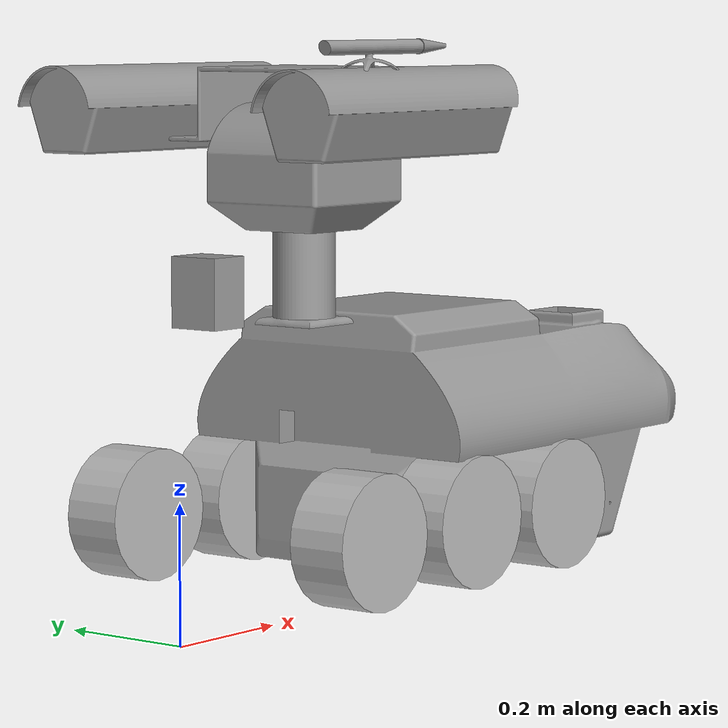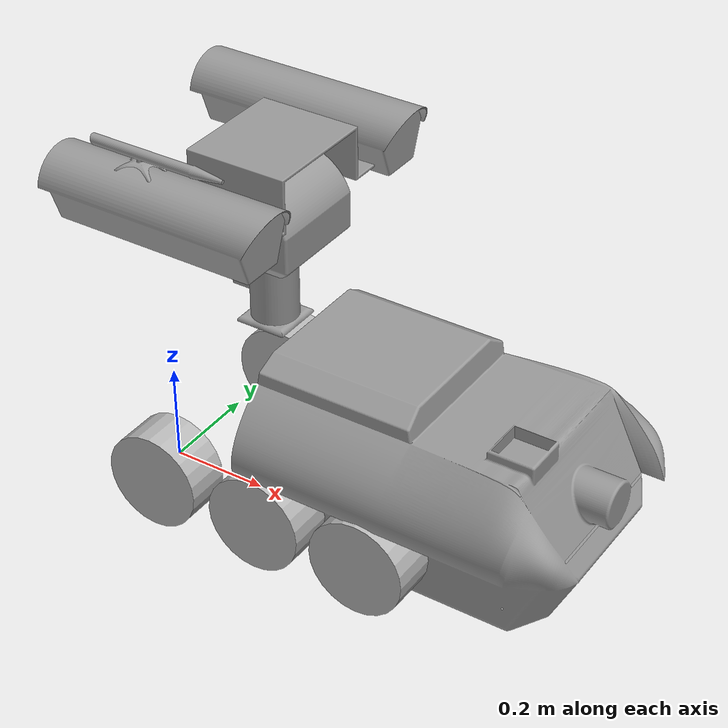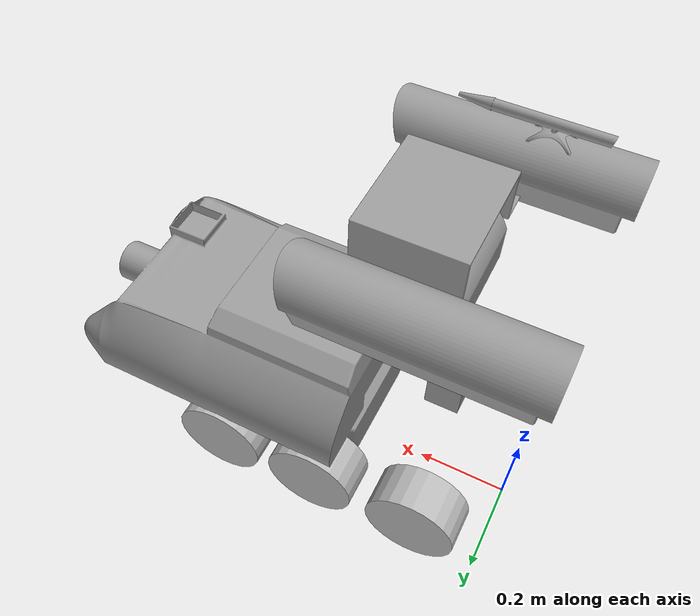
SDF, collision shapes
<sdf version='1.6'>
  <model name='MRC_"Plastun"'>
    <link name='chassis'>
      <pose frame=''>0 0 0 0 -0 0</pose>
      <inertial>
        <pose frame=''>0.318453 -0.004734 0.074568 0 -0 0</pose>
        <mass>31.0001</mass>
        <inertia>
          <ixx>0.463915</ixx>
          <ixy>-0.000471007</ixy>
          <ixz>0.0219991</ixz>
          <iyy>0.467563</iyy>
          <iyz>0.00280295</iyz>
          <izz>0.337105</izz>
        </inertia>
      </inertial>
      <collision name='chassis_collision'>
        <pose frame=''>0.32045 0 0.06272 0 -0 0</pose>
        <geometry>
          <mesh>
            <scale>1 1 1</scale>
            <uri>model://plastun_description/meshes/STL_min/chassis.stl</uri>
          </mesh>
        </geometry>
        <surface>
          <contact>
            <ode/>
          </contact>
          <friction>
            <ode/>
          </friction>
        </surface>
      </collision>
      <collision name='chassis_fixed_joint_lump__hokuyo_collision_1'>
        <pose frame=''>0.15582 0.0808 0.47783 0 -0 0</pose>
        <geometry>
          <box>
            <size>0.06524 0.079833 0.102579</size>
          </box>
        </geometry>
        <surface>
          <contact>
            <ode/>
          </contact>
          <friction>
            <ode/>
          </friction>
        </surface>
      </collision>
      <collision name='chassis_fixed_joint_lump__turrel_vniz_collision_2'>
        <pose frame=''>0.25857 -0.01238 0.42994 0 -0 0</pose>
        <geometry>
          <mesh>
            <scale>1 1 1</scale>
            <uri>model://plastun_description/meshes/STL_min/turrel_vniz.stl</uri>
          </mesh>
        </geometry>
        <surface>
          <contact>
            <ode/>
          </contact>
          <friction>
            <ode/>
          </friction>
        </surface>
      </collision>
      <visual name='chassis_visual'>
        <pose frame=''>0.32045 0 0.06272 0 -0 0</pose>
        <geometry>
          <mesh>
            <scale>1 1 1</scale>
            <uri>model://plastun_description/meshes/STL_min/chassis.stl</uri>
          </mesh>
        </geometry>
        <material>
          <script>
            <name>Gazebo/Grey</name>
            <uri>file://media/materials/scripts/gazebo.material</uri>
          </script>
        </material>
      </visual>
      <visual name='chassis_fixed_joint_lump__hokuyo_visual_1'>
        <pose frame=''>0.15582 0.0808 0.42783 0 -0 0</pose>
        <geometry>
          <mesh>
            <scale>1 1 1</scale>
            <uri>model://plastun_description/meshes/STL_min/hokuyo.stl</uri>
          </mesh>
        </geometry>
        <material>
          <script>
            <name>Gazebo/Grey</name>
            <uri>file://media/materials/scripts/gazebo.material</uri>
          </script>
        </material>
      </visual>
      <visual name='chassis_fixed_joint_lump__turrel_vniz_visual_2'>
        <pose frame=''>0.25857 -0.01238 0.42994 0 -0 0</pose>
        <geometry>
          <mesh>
            <scale>1 1 1</scale>
            <uri>model://plastun_description/meshes/STL_min/turrel_vniz.stl</uri>
          </mesh>
        </geometry>
        <material>
          <script>
            <name>Gazebo/Grey</name>
            <uri>file://media/materials/scripts/gazebo.material</uri>
          </script>
        </material>
      </visual>
      <velocity_decay/>
      <velocity_decay/>
      <velocity_decay/>
      <sensor name='head_hokuyo_sensor' type='gpu_ray'>
        <visualize>1</visualize>
        <update_rate>40</update_rate>
        <ray>
          <scan>
            <horizontal>
              <samples>720</samples>
              <resolution>1</resolution>
              <min_angle>-1.4708</min_angle>
              <max_angle>1.4708</max_angle>
            </horizontal>
          </scan>
          <range>
            <min>0.1</min>
            <max>30</max>
            <resolution>0.01</resolution>
          </range>
          <noise>
            <type>gaussian</type>
            <mean>0</mean>
            <stddev>0.01</stddev>
          </noise>
        </ray>
        <plugin name='gazebo_ros_head_hokuyo_controller' filename='libgazebo_ros_gpu_laser.so'>
          <topicName>plastun/laser/scan</topicName>
          <frameName>hokuyo_link</frameName>
        </plugin>
        <pose frame=''>0.15582 0.0808 2 0 -0 3.14</pose>
      </sensor>
      <gravity>1</gravity>
      <velocity_decay/>
      <self_collide>0</self_collide>
    </link>
    <link name='turrel_sered'>
      <pose frame=''>0.25902 -0.01271 0.56468 0 -0 0</pose>
      <inertial>
        <pose frame=''>0 0 0 0 -0 0</pose>
        <mass>1</mass>
        <inertia>
          <ixx>0.166667</ixx>
          <ixy>0</ixy>
          <ixz>0</ixz>
          <iyy>0.166667</iyy>
          <iyz>0</iyz>
          <izz>0.166667</izz>
        </inertia>
      </inertial>
      <collision name='turrel_sered_collision'>
        <pose frame=''>0 0 0 0 -0 0</pose>
        <geometry>
          <mesh>
            <scale>1 1 1</scale>
            <uri>model://plastun_description/meshes/STL_min/turrel_sered.stl</uri>
          </mesh>
        </geometry>
        <surface>
          <contact>
            <ode/>
          </contact>
          <friction>
            <ode/>
          </friction>
        </surface>
      </collision>
      <visual name='turrel_sered_visual'>
        <pose frame=''>0 0 0 0 -0 0</pose>
        <geometry>
          <mesh>
            <scale>1 1 1</scale>
            <uri>model://plastun_description/meshes/STL_min/turrel_sered.stl</uri>
          </mesh>
        </geometry>
        <material>
          <script>
            <name>Gazebo/Grey</name>
            <uri>file://media/materials/scripts/gazebo.material</uri>
          </script>
        </material>
      </visual>
      <gravity>1</gravity>
      <velocity_decay/>
      <self_collide>0</self_collide>
    </link>
    <joint name='turrel_vniz _ turrel_sered revolute' type='revolute'>
      <child>turrel_sered</child>
      <parent>chassis</parent>
      <axis>
        <xyz>0 0 1</xyz>
        <limit>
          <lower>-5</lower>
          <upper>5</upper>
          <effort>2</effort>
          <velocity>100</velocity>
        </limit>
        <dynamics>
          <spring_reference>0</spring_reference>
          <spring_stiffness>0</spring_stiffness>
        </dynamics>
        <use_parent_model_frame>1</use_parent_model_frame>
      </axis>
    </joint>
    <link name='turrel_vverh'>
      <pose frame=''>0.26208 -0.00803 0.69346 0 -0 0</pose>
      <inertial>
        <pose frame=''>-0.040349 -0.072867 0.028583 0 -0 0</pose>
        <mass>1.52996</mass>
        <inertia>
          <ixx>0.351851</ixx>
          <ixy>-0.00850413</ixy>
          <ixz>0.0034716</ixz>
          <iyy>0.343208</iyy>
          <iyz>0.00604847</iyz>
          <izz>0.356349</izz>
        </inertia>
      </inertial>
      <collision name='turrel_vverh_collision'>
        <pose frame=''>0 0 0 0 -0 0</pose>
        <geometry>
          <mesh>
            <scale>1 1 1</scale>
            <uri>model://plastun_description/meshes/STL_min/turrel_vverh.stl</uri>
          </mesh>
        </geometry>
        <surface>
          <contact>
            <ode/>
          </contact>
          <friction>
            <ode/>
          </friction>
        </surface>
      </collision>
      <collision name='turrel_vverh_fixed_joint_lump__camera_1_collision_1'>
        <pose frame=''>-0.07152 -0.21215 -0.017 0 -0 0</pose>
        <geometry>
          <mesh>
            <scale>1 1 1</scale>
            <uri>model://plastun_description/meshes/STL_min/camera.stl</uri>
          </mesh>
        </geometry>
        <surface>
          <contact>
            <ode/>
          </contact>
          <friction>
            <ode/>
          </friction>
        </surface>
      </collision>
      <collision name='turrel_vverh_fixed_joint_lump__lazer_ukazka_collision_2'>
        <pose frame=''>-0.11918 -0.21104 0.08848 0 -0 0</pose>
        <geometry>
          <mesh>
            <scale>1 1 1</scale>
            <uri>model://plastun_description/meshes/STL_min/lazer_ukazka.stl</uri>
          </mesh>
        </geometry>
        <surface>
          <contact>
            <ode/>
          </contact>
          <friction>
            <ode/>
          </friction>
        </surface>
      </collision>
      <collision name='turrel_vverh_fixed_joint_lump__camera_2_collision_3'>
        <pose frame=''>-0.07152 0.21176 -0.017 0 -0 0</pose>
        <geometry>
          <mesh>
            <scale>1 1 1</scale>
            <uri>model://plastun_description/meshes/STL_min/camera.stl</uri>
          </mesh>
        </geometry>
        <surface>
          <contact>
            <ode/>
          </contact>
          <friction>
            <ode/>
          </friction>
        </surface>
      </collision>
      <visual name='turrel_vverh_visual'>
        <pose frame=''>0 0 0 0 -0 0</pose>
        <geometry>
          <mesh>
            <scale>1 1 1</scale>
            <uri>model://plastun_description/meshes/STL_min/turrel_vverh.stl</uri>
          </mesh>
        </geometry>
        <material>
          <script>
            <name>Gazebo/Grey</name>
            <uri>file://media/materials/scripts/gazebo.material</uri>
          </script>
        </material>
      </visual>
      <visual name='turrel_vverh_fixed_joint_lump__camera_1_visual_1'>
        <pose frame=''>-0.07152 -0.21215 -0.017 0 -0 0</pose>
        <geometry>
          <mesh>
            <scale>1 1 1</scale>
            <uri>model://plastun_description/meshes/STL_min/camera.stl</uri>
          </mesh>
        </geometry>
        <material>
          <script>
            <name>Gazebo/Grey</name>
            <uri>file://media/materials/scripts/gazebo.material</uri>
          </script>
        </material>
      </visual>
      <visual name='turrel_vverh_fixed_joint_lump__lazer_ukazka_visual_2'>
        <pose frame=''>-0.11918 -0.21104 0.08848 0 -0 0</pose>
        <geometry>
          <mesh>
            <scale>1 1 1</scale>
            <uri>model://plastun_description/meshes/STL_min/lazer_ukazka.stl</uri>
          </mesh>
        </geometry>
        <material>
          <script>
            <uri>__default__</uri>
            <name>__default__</name>
          </script>
        </material>
      </visual>
      <visual name='turrel_vverh_fixed_joint_lump__camera_2_visual_3'>
        <pose frame=''>-0.07152 0.21176 -0.017 0 -0 0</pose>
        <geometry>
          <mesh>
            <scale>1 1 1</scale>
            <uri>model://plastun_description/meshes/STL_min/camera.stl</uri>
          </mesh>
        </geometry>
        <material>
          <script>
            <name>Gazebo/Grey</name>
            <uri>file://media/materials/scripts/gazebo.material</uri>
          </script>
        </material>
      </visual>
      <velocity_decay/>
      <velocity_decay/>
      <velocity_decay/>
      <sensor name='camera' type='camera'>
        <camera name='__default__'>
          <horizontal_fov>1.0123</horizontal_fov>
          <image>
            <width>320</width>
            <height>200</height>
          </image>
          <clip>
            <near>0.001</near>
            <far>100</far>
          </clip>
        </camera>
        <always_on>1</always_on>
        <update_rate>30</update_rate>
        <visualize>1</visualize>
        <plugin name='camera_controller' filename='libgazebo_ros_camera.so'>
          <alwaysOn>true</alwaysOn>
          <updateRate>30</updateRate>
          <cameraName>plastun/camera_1</cameraName>
          <imageTopicName>image_raw_1</imageTopicName>
          <cameraInfoTopicName>camera_info_1</cameraInfoTopicName>
          <frameName>camera_link</frameName>
          <hackBaseline>0.07</hackBaseline>
          <distortionK1>0.0</distortionK1>
          <distortionK2>0.0</distortionK2>
          <distortionK3>0.0</distortionK3>
          <distortionT1>0.0</distortionT1>
          <distortionT2>0.0</distortionT2>
        </plugin>
        <pose frame=''>-0.07152 -0.21215 -0.017 0 -0 0</pose>
      </sensor>
      <velocity_decay/>
      <sensor name='head_hokuyo_sensor' type='gpu_ray'>
        <visualize>1</visualize>
        <update_rate>40</update_rate>
        <ray>
          <scan>
            <horizontal>
              <samples>2</samples>
              <resolution>1</resolution>
              <min_angle>-0.005</min_angle>
              <max_angle>0.005</max_angle>
            </horizontal>
          </scan>
          <range>
            <min>0.1</min>
            <max>30</max>
            <resolution>0.01</resolution>
          </range>
          <noise>
            <type>gaussian</type>
            <mean>0</mean>
            <stddev>0.01</stddev>
          </noise>
        </ray>
        <plugin name='gazebo_ros_head_hokuyo_controller' filename='libgazebo_ros_gpu_laser.so'>
          <topicName>plastun/laser/scan_ukaz</topicName>
          <frameName>ukaz_link</frameName>
        </plugin>
        <pose frame=''>-0.11918 -0.21104 0.08848 0 -0 0</pose>
      </sensor>
      <velocity_decay/>
      <gravity>1</gravity>
      <velocity_decay/>
      <self_collide>0</self_collide>
      <sensor name='camera' type='camera'>
        <camera name='__default__'>
          <horizontal_fov>1.0123</horizontal_fov>
          <image>
            <width>320</width>
            <height>200</height>
          </image>
          <clip>
            <near>0.001</near>
            <far>100</far>
          </clip>
        </camera>
        <always_on>1</always_on>
        <update_rate>30</update_rate>
        <visualize>1</visualize>
        <plugin name='camera_controller' filename='libgazebo_ros_camera.so'>
          <alwaysOn>true</alwaysOn>
          <updateRate>30</updateRate>
          <cameraName>plastun/camera_2</cameraName>
          <imageTopicName>image_raw_2</imageTopicName>
          <cameraInfoTopicName>camera_info_2</cameraInfoTopicName>
          <frameName>camera_link</frameName>
          <hackBaseline>0.07</hackBaseline>
          <distortionK1>0.0</distortionK1>
          <distortionK2>0.0</distortionK2>
          <distortionK3>0.0</distortionK3>
          <distortionT1>0.0</distortionT1>
          <distortionT2>0.0</distortionT2>
        </plugin>
        <pose frame=''>-0.07152 0.21176 -0.017 0 -0 0</pose>
      </sensor>
    </link>
    <joint name='turrel_sered _ turrel_vverh up-to-down' type='revolute'>
      <child>turrel_vverh</child>
      <parent>turrel_sered</parent>
      <axis>
        <xyz>0 1 0</xyz>
        <limit>
          <lower>-1</lower>
          <upper>1</upper>
          <effort>1</effort>
          <velocity>100</velocity>
        </limit>
        <dynamics>
          <spring_reference>0</spring_reference>
          <spring_stiffness>0</spring_stiffness>
        </dynamics>
        <use_parent_model_frame>1</use_parent_model_frame>
      </axis>
    </joint>
    <link name='wheel_left_1'>
      <pose frame=''>0.36566 -0.20499 0.15237 0 -0 0</pose>
      <inertial>
        <pose frame=''>0 0 0 0 -0 0</pose>
        <mass>1</mass>
        <inertia>
          <ixx>0.166667</ixx>
          <ixy>0</ixy>
          <ixz>0</ixz>
          <iyy>0.166667</iyy>
          <iyz>0</iyz>
          <izz>0.166667</izz>
        </inertia>
      </inertial>
      <collision name='wheel_left_1_collision'>
        <pose frame=''>0 0 0 1.5708 -0 0</pose>
        <geometry>
          <cylinder>
            <length>0.09</length>
            <radius>0.096</radius>
          </cylinder>
        </geometry>
      </collision>
      <visual name='wheel_left_1_visual'>
        <pose frame=''>0 0 0 0 -0 0</pose>
        <geometry>
          <mesh>
            <scale>1 1 1</scale>
            <uri>model://plastun_description/meshes/STL_min/wheel.stl</uri>
          </mesh>
        </geometry>
      </visual>
    </link>
    <joint name='wheel_lev_1' type='revolute'>
      <child>wheel_left_1</child>
      <parent>chassis</parent>
      <axis>
        <xyz>0 -1 0</xyz>
        <limit>
          <lower>-1e+50</lower>
          <upper>1e+50</upper>
          <effort>-1</effort>
          <velocity>100</velocity>
        </limit>
        <dynamics>
          <spring_reference>0</spring_reference>
          <spring_stiffness>0</spring_stiffness>
        </dynamics>
        <use_parent_model_frame>1</use_parent_model_frame>
      </axis>
    </joint>
    <link name='wheel_left_2'>
      <pose frame=''>0.13874 -0.20499 0.15237 0 -0 0</pose>
      <inertial>
        <pose frame=''>0 0 0 0 -0 0</pose>
        <mass>1</mass>
        <inertia>
          <ixx>0.166667</ixx>
          <ixy>0</ixy>
          <ixz>0</ixz>
          <iyy>0.166667</iyy>
          <iyz>0</iyz>
          <izz>0.166667</izz>
        </inertia>
      </inertial>
      <collision name='wheel_left_2_collision'>
        <pose frame=''>0 0 0 1.5708 -0 0</pose>
        <geometry>
          <cylinder>
            <length>0.09</length>
            <radius>0.096</radius>
          </cylinder>
        </geometry>
      </collision>
      <visual name='wheel_left_2_visual'>
        <pose frame=''>0 0 0 0 -0 0</pose>
        <geometry>
          <mesh>
            <scale>1 1 1</scale>
            <uri>model://plastun_description/meshes/STL_min/wheel.stl</uri>
          </mesh>
        </geometry>
      </visual>
    </link>
    <joint name='wheel_lev_2' type='revolute'>
      <child>wheel_left_2</child>
      <parent>chassis</parent>
      <axis>
        <xyz>0 -1 0</xyz>
        <limit>
          <lower>-1e+50</lower>
          <upper>1e+50</upper>
          <effort>-1</effort>
          <velocity>100</velocity>
        </limit>
        <dynamics>
          <spring_reference>0</spring_reference>
          <spring_stiffness>0</spring_stiffness>
        </dynamics>
        <use_parent_model_frame>1</use_parent_model_frame>
      </axis>
    </joint>
    <link name='wheel_left_3'>
      <pose frame=''>0.58393 -0.20499 0.15237 0 -0 0</pose>
      <inertial>
        <pose frame=''>0 0 0 0 -0 0</pose>
        <mass>1</mass>
        <inertia>
          <ixx>0.166667</ixx>
          <ixy>0</ixy>
          <ixz>0</ixz>
          <iyy>0.166667</iyy>
          <iyz>0</iyz>
          <izz>0.166667</izz>
        </inertia>
      </inertial>
      <collision name='wheel_left_3_collision'>
        <pose frame=''>0 0 0 1.5708 -0 0</pose>
        <geometry>
          <cylinder>
            <length>0.09</length>
            <radius>0.096</radius>
          </cylinder>
        </geometry>
      </collision>
      <visual name='wheel_left_3_visual'>
        <pose frame=''>0 0 0 0 -0 0</pose>
        <geometry>
          <mesh>
            <scale>1 1 1</scale>
            <uri>model://plastun_description/meshes/STL_min/wheel.stl</uri>
          </mesh>
        </geometry>
      </visual>
    </link>
    <joint name='wheel_lev_3' type='revolute'>
      <child>wheel_left_3</child>
      <parent>chassis</parent>
      <axis>
        <xyz>0 -1 0</xyz>
        <limit>
          <lower>-1e+50</lower>
          <upper>1e+50</upper>
          <effort>-1</effort>
          <velocity>100</velocity>
        </limit>
        <dynamics>
          <spring_reference>0</spring_reference>
          <spring_stiffness>0</spring_stiffness>
        </dynamics>
        <use_parent_model_frame>1</use_parent_model_frame>
      </axis>
    </joint>
    <link name='wheel_right_1'>
      <pose frame=''>0.13874 0.20499 0.15237 0 -0 0</pose>
      <inertial>
        <pose frame=''>0 0 0 0 -0 0</pose>
        <mass>1</mass>
        <inertia>
          <ixx>0.166667</ixx>
          <ixy>0</ixy>
          <ixz>0</ixz>
          <iyy>0.166667</iyy>
          <iyz>0</iyz>
          <izz>0.166667</izz>
        </inertia>
      </inertial>
      <collision name='wheel_right_1_collision'>
        <pose frame=''>0 0 0 1.5708 -0 0</pose>
        <geometry>
          <cylinder>
            <length>0.09</length>
            <radius>0.096</radius>
          </cylinder>
        </geometry>
      </collision>
      <visual name='wheel_right_1_visual'>
        <pose frame=''>0 0 0 0 -0 0</pose>
        <geometry>
          <mesh>
            <scale>1 1 1</scale>
            <uri>model://plastun_description/meshes/STL_min/wheel.stl</uri>
          </mesh>
        </geometry>
      </visual>
    </link>
    <joint name='wheel_prav_1' type='revolute'>
      <child>wheel_right_1</child>
      <parent>chassis</parent>
      <axis>
        <xyz>0 -1 0</xyz>
        <limit>
          <lower>-1e+50</lower>
          <upper>1e+50</upper>
          <effort>-1</effort>
          <velocity>100</velocity>
        </limit>
        <dynamics>
          <spring_reference>0</spring_reference>
          <spring_stiffness>0</spring_stiffness>
        </dynamics>
        <use_parent_model_frame>1</use_parent_model_frame>
      </axis>
    </joint>
    <link name='wheel_right_2'>
      <pose frame=''>0.36566 0.20499 0.15237 0 -0 0</pose>
      <inertial>
        <pose frame=''>0 0 0 0 -0 0</pose>
        <mass>1</mass>
        <inertia>
          <ixx>0.166667</ixx>
          <ixy>0</ixy>
          <ixz>0</ixz>
          <iyy>0.166667</iyy>
          <iyz>0</iyz>
          <izz>0.166667</izz>
        </inertia>
      </inertial>
      <collision name='wheel_right_2_collision'>
        <pose frame=''>0 0 0 1.5708 -0 0</pose>
        <geometry>
          <cylinder>
            <length>0.09</length>
            <radius>0.096</radius>
          </cylinder>
        </geometry>
      </collision>
      <visual name='wheel_right_2_visual'>
        <pose frame=''>0 0 0 0 -0 0</pose>
        <geometry>
          <mesh>
            <scale>1 1 1</scale>
            <uri>model://plastun_description/meshes/STL_min/wheel.stl</uri>
          </mesh>
        </geometry>
      </visual>
    </link>
    <joint name='wheel_prav_2' type='revolute'>
      <child>wheel_right_2</child>
      <parent>chassis</parent>
      <axis>
        <xyz>0 -1 0</xyz>
        <limit>
          <lower>-1e+50</lower>
          <upper>1e+50</upper>
          <effort>-1</effort>
          <velocity>100</velocity>
        </limit>
        <dynamics>
          <spring_reference>0</spring_reference>
          <spring_stiffness>0</spring_stiffness>
        </dynamics>
        <use_parent_model_frame>1</use_parent_model_frame>
      </axis>
    </joint>
    <link name='wheel_right_3'>
      <pose frame=''>0.58393 0.20499 0.15237 0 -0 0</pose>
      <inertial>
        <pose frame=''>0 0 0 0 -0 0</pose>
        <mass>1</mass>
        <inertia>
          <ixx>0.166667</ixx>
          <ixy>0</ixy>
          <ixz>0</ixz>
          <iyy>0.166667</iyy>
          <iyz>0</iyz>
          <izz>0.166667</izz>
        </inertia>
      </inertial>
      <collision name='wheel_right_3_collision'>
        <pose frame=''>0 0 0 1.5708 -0 0</pose>
        <geometry>
          <cylinder>
            <length>0.09</length>
            <radius>0.096</radius>
          </cylinder>
        </geometry>
      </collision>
      <visual name='wheel_right_3_visual'>
        <pose frame=''>0 0 0 0 -0 0</pose>
        <geometry>
          <mesh>
            <scale>1 1 1</scale>
            <uri>model://plastun_description/meshes/STL_min/wheel.stl</uri>
          </mesh>
        </geometry>
      </visual>
    </link>
    <joint name='wheel_prav_3' type='revolute'>
      <child>wheel_right_3</child>
      <parent>chassis</parent>
      <axis>
        <xyz>0 -1 0</xyz>
        <limit>
          <lower>-1e+50</lower>
          <upper>1e+50</upper>
          <effort>-1</effort>
          <velocity>100</velocity>
        </limit>
        <dynamics>
          <spring_reference>0</spring_reference>
          <spring_stiffness>0</spring_stiffness>
        </dynamics>
        <use_parent_model_frame>1</use_parent_model_frame>
      </axis>
    </joint>
    <plugin name='gazebo_ros_control' filename='libgazebo_ros_control.so'>
      <robotNamespace>/plastun</robotNamespace>
    </plugin>
    <static>0</static>
    <plugin name='skid_steer_drive_controller' filename='libgazebo_ros_skid_steer_drive.so'>
      <updateRate>100.0</updateRate>
      <robotNamespace>plastun</robotNamespace>
      <leftFrontJoint>wheel_lev_1</leftFrontJoint>
      <rightFrontJoint>wheel_prav_1</rightFrontJoint>
      <leftRearJoint>wheel_lev_3</leftRearJoint>
      <rightRearJoint>wheel_prav_3</rightRearJoint>
      <wheelSeparation>0.4</wheelSeparation>
      <wheelDiameter>0.192</wheelDiameter>
      <robotBaseFrame>chassis</robotBaseFrame>
      <torque>20</torque>
      <commandTopic>cmd_vel</commandTopic>
      <odometryTopic>odom</odometryTopic>
      <broadcastTF>false</broadcastTF>
    </plugin>
  </model>
</sdf>
